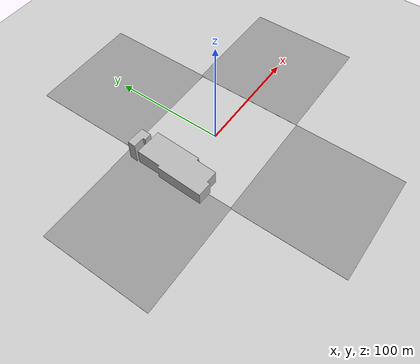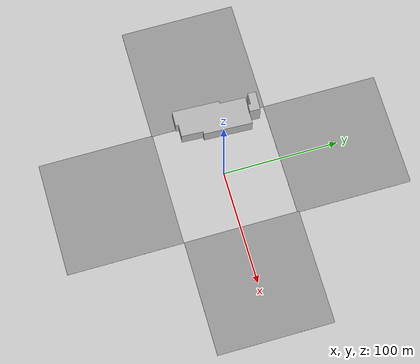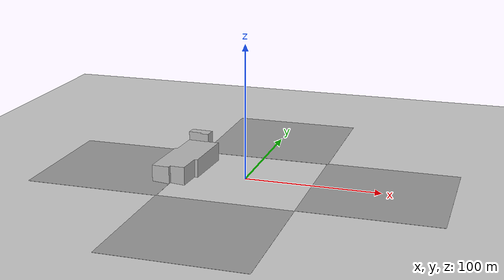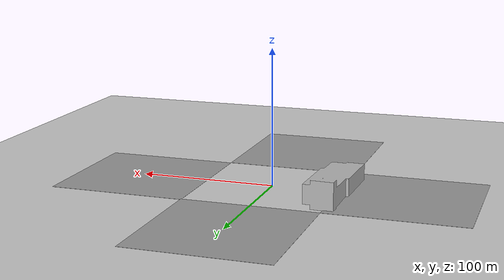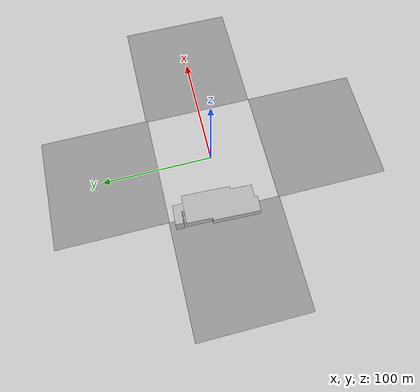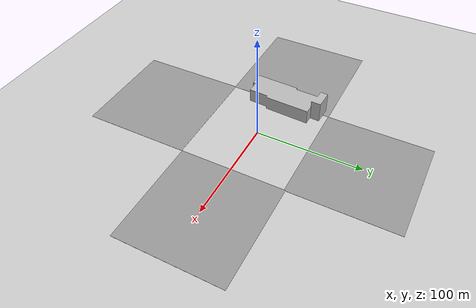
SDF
<sdf version="1.7">
 <world name="default">
  <light name="sun" type="directional">
   <pose>0 0 10 0 -0 0</pose>
   <diffuse>0.8 0.8 0.8 1</diffuse>
   <specular>0.2 0.2 0.2 1</specular>
   <attenuation>
    <range>1000</range>
    <constant>0.9</constant>
    <linear>0.01</linear>
    <quadratic>0.001</quadratic>
   </attenuation>
   <direction>-0.5 0.1 -0.9</direction>
   <spot><inner_angle>0</inner_angle><outer_angle>0</outer_angle><falloff>0</falloff></spot>
  </light>
  <model name="ground_plane">
   <static>1</static>
   <link name="link">
    <collision name="collision">
     <geometry><plane><normal>0 0 1</normal><size>100 100</size></plane></geometry>
     <surface>
      <contact><collide_bitmask>65535</collide_bitmask></contact>
      <friction><ode><mu>100</mu><mu2>50</mu2></ode></friction>
     </surface>
    </collision>
    <visual name="visual">
     <cast_shadows>0</cast_shadows>
     <geometry><plane><normal>0 0 1</normal><size>100 100</size></plane></geometry>
     <material>
      <script><uri>file://media/materials/scripts/gazebo.material</uri><name>Gazebo/Grey</name></script>
     </material>
    </visual>
   </link>
  </model>
  <gravity>0 0 -9.8</gravity>
  <magnetic_field>6e-06 2.3e-05 -4.2e-05</magnetic_field>
  <atmosphere type="adiabatic"/>
  <physics type="ode">
   <max_step_size>0.001</max_step_size>
   <real_time_factor>1</real_time_factor>
   <real_time_update_rate>1000</real_time_update_rate>
  </physics>
  <scene><ambient>0.4 0.4 0.4 1</ambient><background>0.7 0.7 0.7 1</background><shadows>1</shadows></scene>
  <audio><device>default</device></audio>
  <spherical_coordinates>
   <surface_model>EARTH_WGS84</surface_model>
   <latitude_deg>0</latitude_deg>
   <longitude_deg>0</longitude_deg>
   <elevation>0</elevation>
   <heading_deg>0</heading_deg>
  </spherical_coordinates>
  <model name="ground_plane_0">
   <static>1</static>
   <link name="link">
    <collision name="collision">
     <geometry><plane><normal>0 0 1</normal><size>100 100</size></plane></geometry>
     <surface>
      <contact><collide_bitmask>65535</collide_bitmask></contact>
      <friction><ode><mu>100</mu><mu2>50</mu2></ode></friction>
     </surface>
    </collision>
    <visual name="visual">
     <cast_shadows>0</cast_shadows>
     <geometry><plane><normal>0 0 1</normal><size>100 100</size></plane></geometry>
     <material>
      <script><uri>file://media/materials/scripts/gazebo.material</uri><name>Gazebo/Grey</name></script>
     </material>
    </visual>
   </link>
   <pose>-99.4306 -0.033678 0 0 -0 0</pose>
  </model>
  <model name="ground_plane_1">
   <static>1</static>
   <link name="link">
    <collision name="collision">
     <geometry><plane><normal>0 0 1</normal><size>100 100</size></plane></geometry>
     <surface>
      <contact><collide_bitmask>65535</collide_bitmask></contact>
      <friction><ode><mu>100</mu><mu2>50</mu2></ode></friction>
     </surface>
    </collision>
    <visual name="visual">
     <cast_shadows>0</cast_shadows>
     <geometry><plane><normal>0 0 1</normal><size>100 100</size></plane></geometry>
     <material>
      <script><uri>file://media/materials/scripts/gazebo.material</uri><name>Gazebo/Grey</name></script>
     </material>
    </visual>
   </link>
   <pose>-0.114521 -99.4409 0 0 -0 0</pose>
  </model>
  <model name="ground_plane_2">
   <static>1</static>
   <link name="link">
    <collision name="collision">
     <geometry><plane><normal>0 0 1</normal><size>100 100</size></plane></geometry>
     <surface>
      <contact><collide_bitmask>65535</collide_bitmask></contact>
      <friction><ode><mu>100</mu><mu2>50</mu2></ode></friction>
     </surface>
    </collision>
    <visual name="visual">
     <cast_shadows>0</cast_shadows>
     <geometry><plane><normal>0 0 1</normal><size>100 100</size></plane></geometry>
     <material>
      <script><uri>file://media/materials/scripts/gazebo.material</uri><name>Gazebo/Grey</name></script>
     </material>
    </visual>
   </link>
   <pose>0.461459 99.511 0 0 -0 0</pose>
  </model>
  <model name="ground_plane_3">
   <static>1</static>
   <link name="link">
    <collision name="collision">
     <geometry><plane><normal>0 0 1</normal><size>100 100</size></plane></geometry>
     <surface>
      <contact><collide_bitmask>65535</collide_bitmask></contact>
      <friction><ode><mu>100</mu><mu2>50</mu2></ode></friction>
     </surface>
    </collision>
    <visual name="visual">
     <cast_shadows>0</cast_shadows>
     <geometry><plane><normal>0 0 1</normal><size>100 100</size></plane></geometry>
     <material>
      <script><uri>file://media/materials/scripts/gazebo.material</uri><name>Gazebo/Grey</name></script>
     </material>
    </visual>
   </link>
   <pose>99.6791 0.94979 0 0 -0 0</pose>
  </model>
  <model name="batiment S ENSTA">
   <pose>-9.34426 6.91138 0 0 -0 0</pose>
   <static>1</static>
   <link name="batiment_link">
    <collision name="batiment_collision">
     <geometry><mesh><uri>model://mon_batiment/meshes/batiment.dae</uri><scale>1 1 1</scale></mesh></geometry>
    </collision>
    <visual name="batiment_visual">
     <geometry><mesh><uri>model://mon_batiment/meshes/batiment.dae</uri><scale>1 1 1</scale></mesh></geometry>
    </visual>
   </link>
  </model>
 </world>
</sdf>
